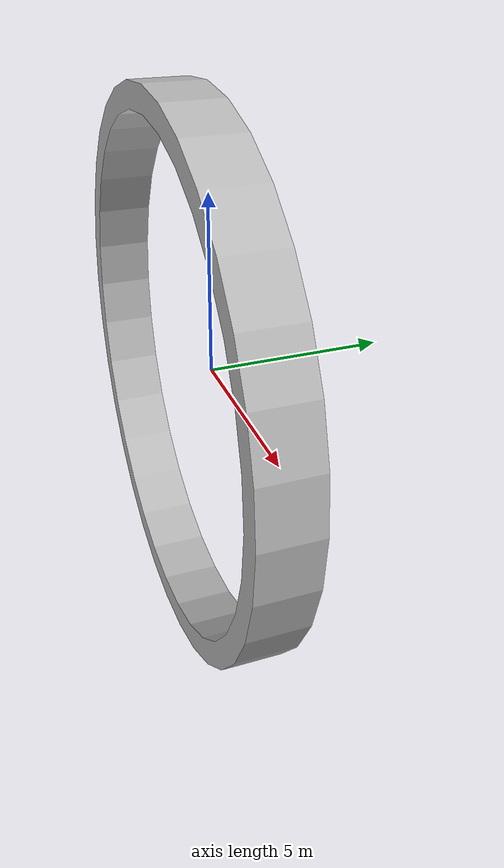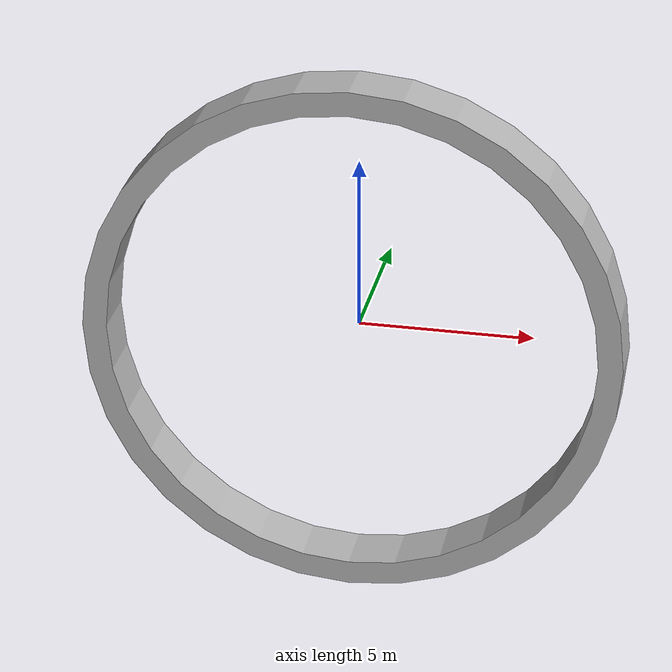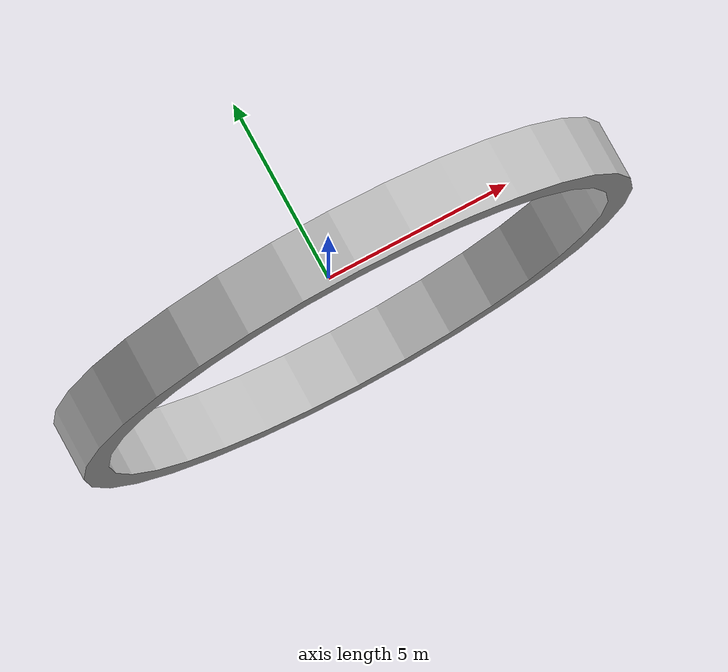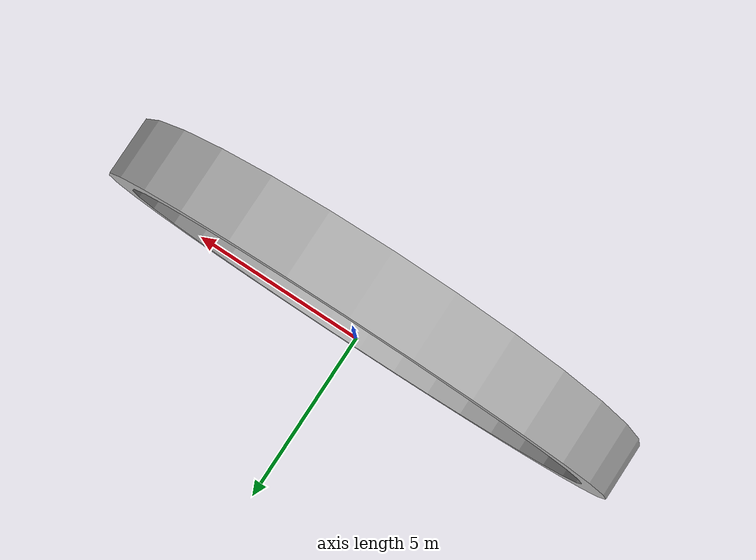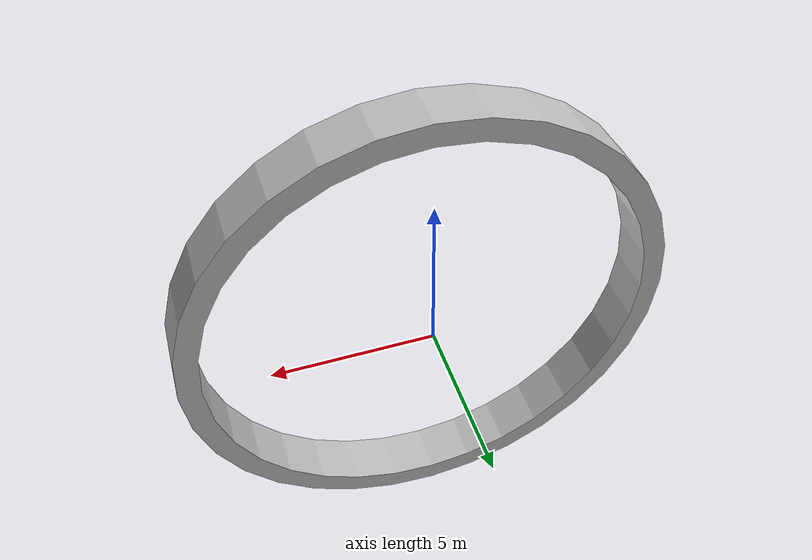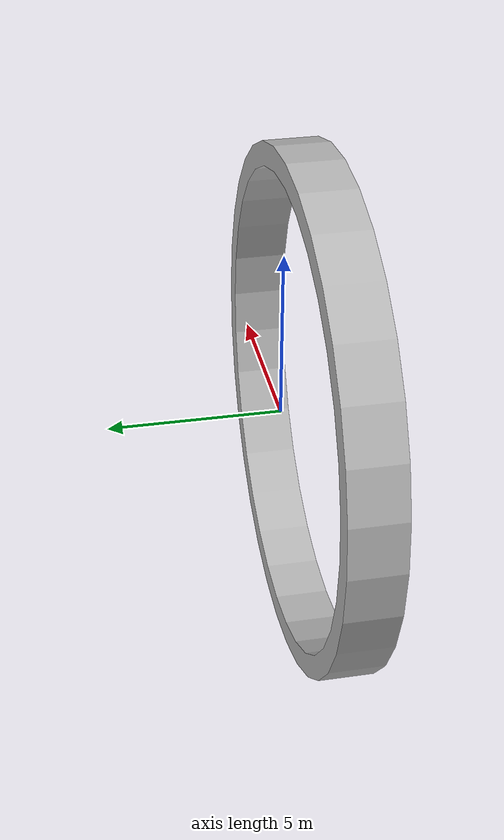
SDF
<sdf version='1.6'>
	<world name='default'>
	<gravity>0 0 -9.8</gravity>
		<model name='circle_arena.obj'>
			<static>1</static>
            <pose>0 0 0 1.57 0 0</pose>
			<link name='link_d0'>
                <inertial>
                    <mass>1000</mass>
                    <inertia>
                        <ixx>1</ixx>
                        <ixy>0</ixy>
                        <ixz>0</ixz>
                        <iyy>1</iyy>
                        <iyz>0</iyz>
                        <izz>1</izz>
                    </inertia>
                </inertial>
                <collision name='collision_1'>
                <pose>0 0 0 1.57 0 0</pose>
                        <geometry>
                        <mesh>
                            <scale>1 1 1</scale>
                            <uri>circle_arena.obj</uri>
                        </mesh>
                        </geometry>
                </collision>
                <visual name='visual'>
                <pose>0 0 0 1.57 0 0</pose>
                    <geometry>
                    <mesh>
                        <scale>1 1 1</scale>
                        <uri>circle_arena.obj</uri>
                    </mesh>
                    </geometry>
                <material name="white">
                    <color rgba="1 1 1 1"/>
                </material>
                </visual>
			 </link>
		</model>
	</world>
</sdf>
